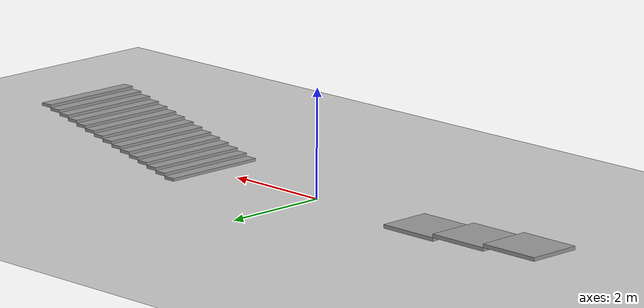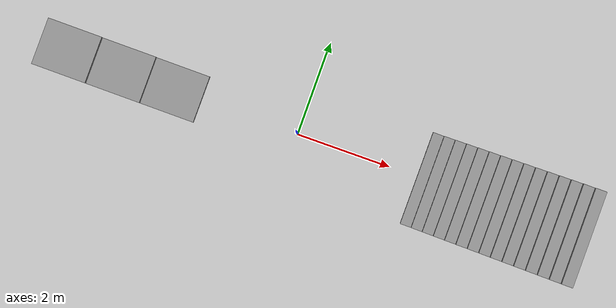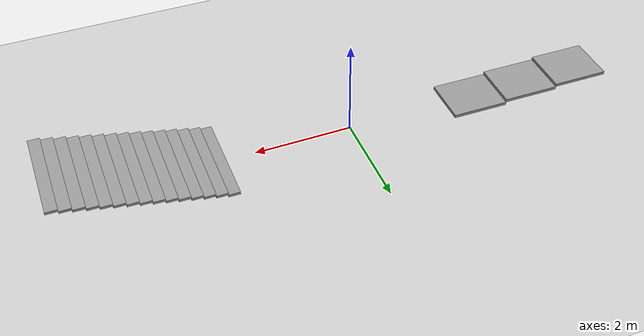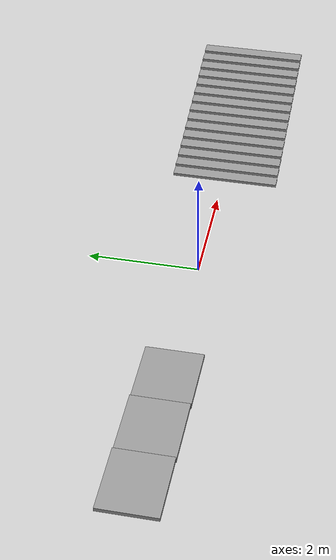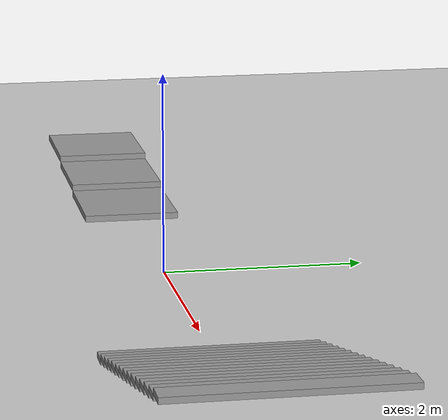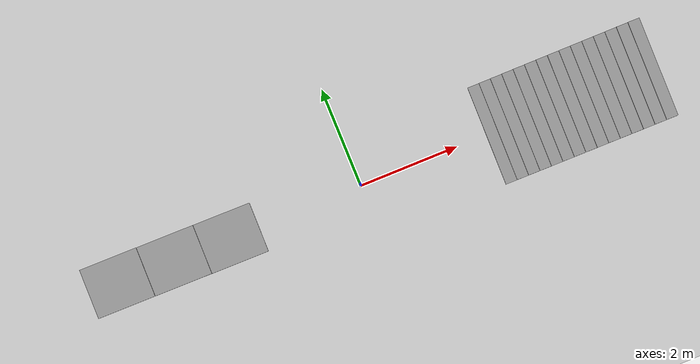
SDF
<sdf version="1.7">
 <world name="default">
  <model name="ground_plane">
   <static>1</static>
   <link name="link">
    <collision name="collision">
     <geometry><plane><normal>0 0 1</normal><size>100 100</size></plane></geometry>
     <surface>
      <contact><collide_bitmask>65535</collide_bitmask></contact>
      <friction><ode><mu>100</mu><mu2>50</mu2></ode></friction>
     </surface>
    </collision>
    <visual name="visual">
     <cast_shadows>0</cast_shadows>
     <geometry><plane><normal>0 0 1</normal><size>100 100</size></plane></geometry>
     <material>
      <script><uri>file://media/materials/scripts/gazebo.material</uri><name>Gazebo/Grey</name></script>
     </material>
    </visual>
   </link>
  </model>
  <model name="stair4">
   <pose>3.22875 -0.027347 0 0 -0 1.56364</pose>
   <link name="Stairs_0">
    <visual name="Stairs_0_Visual_0">
     <pose>-0 0.508333 0.026667 0 -0 0</pose>
     <geometry><box><size>2 0.233333 0.053333</size></box></geometry>
     <material>
      <script><uri>file://media/materials/scripts/gazebo.material</uri><name>Gazebo/Grey</name></script>
      <ambient>1 1 1 1</ambient>
     </material>
     <meta><layer>0</layer></meta>
    </visual>
    <collision name="Stairs_0_Collision_0">
     <geometry><box><size>2 0.233333 0.053333</size></box></geometry>
     <pose>-0 0.508333 0.026667 0 -0 0</pose>
    </collision>
    <visual name="Stairs_0_Visual_1">
     <pose>-0 0.275 0.08 0 -0 0</pose>
     <geometry><box><size>2 0.233333 0.053333</size></box></geometry>
     <material>
      <script><uri>file://media/materials/scripts/gazebo.material</uri><name>Gazebo/Grey</name></script>
      <ambient>1 1 1 1</ambient>
     </material>
     <meta><layer>0</layer></meta>
    </visual>
    <collision name="Stairs_0_Collision_1">
     <geometry><box><size>2 0.233333 0.053333</size></box></geometry>
     <pose>-0 0.275 0.08 0 -0 0</pose>
    </collision>
    <visual name="Stairs_0_Visual_2">
     <pose>-0 0.041667 0.133333 0 -0 0</pose>
     <geometry><box><size>2 0.233333 0.053333</size></box></geometry>
     <material>
      <script><uri>file://media/materials/scripts/gazebo.material</uri><name>Gazebo/Grey</name></script>
      <ambient>1 1 1 1</ambient>
     </material>
     <meta><layer>0</layer></meta>
    </visual>
    <collision name="Stairs_0_Collision_2">
     <geometry><box><size>2 0.233333 0.053333</size></box></geometry>
     <pose>-0 0.041667 0.133333 0 -0 0</pose>
    </collision>
    <visual name="Stairs_0_Visual_3">
     <pose>-0 -0.191667 0.186667 0 -0 0</pose>
     <geometry><box><size>2 0.233333 0.053333</size></box></geometry>
     <material>
      <script><uri>file://media/materials/scripts/gazebo.material</uri><name>Gazebo/Grey</name></script>
      <ambient>1 1 1 1</ambient>
     </material>
     <meta><layer>0</layer></meta>
    </visual>
    <collision name="Stairs_0_Collision_3">
     <geometry><box><size>2 0.233333 0.053333</size></box></geometry>
     <pose>-0 -0.191667 0.186667 0 -0 0</pose>
    </collision>
    <visual name="Stairs_0_Visual_4">
     <pose>-0 -0.425 0.24 0 -0 0</pose>
     <geometry><box><size>2 0.233333 0.053333</size></box></geometry>
     <material>
      <script><uri>file://media/materials/scripts/gazebo.material</uri><name>Gazebo/Grey</name></script>
      <ambient>1 1 1 1</ambient>
     </material>
     <meta><layer>0</layer></meta>
    </visual>
    <collision name="Stairs_0_Collision_4">
     <geometry><box><size>2 0.233333 0.053333</size></box></geometry>
     <pose>-0 -0.425 0.24 0 -0 0</pose>
    </collision>
    <visual name="Stairs_0_Visual_5">
     <pose>-0 -0.658333 0.293333 0 -0 0</pose>
     <geometry><box><size>2 0.233333 0.053333</size></box></geometry>
     <material>
      <script><uri>file://media/materials/scripts/gazebo.material</uri><name>Gazebo/Grey</name></script>
      <ambient>1 1 1 1</ambient>
     </material>
     <meta><layer>0</layer></meta>
    </visual>
    <collision name="Stairs_0_Collision_5">
     <geometry><box><size>2 0.233333 0.053333</size></box></geometry>
     <pose>-0 -0.658333 0.293333 0 -0 0</pose>
    </collision>
    <visual name="Stairs_0_Visual_6">
     <pose>-0 -0.891667 0.346667 0 -0 0</pose>
     <geometry><box><size>2 0.233333 0.053333</size></box></geometry>
     <material>
      <script><uri>file://media/materials/scripts/gazebo.material</uri><name>Gazebo/Grey</name></script>
      <ambient>1 1 1 1</ambient>
     </material>
     <meta><layer>0</layer></meta>
    </visual>
    <collision name="Stairs_0_Collision_6">
     <geometry><box><size>2 0.233333 0.053333</size></box></geometry>
     <pose>-0 -0.891667 0.346667 0 -0 0</pose>
    </collision>
    <visual name="Stairs_0_Visual_7">
     <pose>-0 -1.125 0.4 0 -0 0</pose>
     <geometry><box><size>2 0.233333 0.053333</size></box></geometry>
     <material>
      <script><uri>file://media/materials/scripts/gazebo.material</uri><name>Gazebo/Grey</name></script>
      <ambient>1 1 1 1</ambient>
     </material>
     <meta><layer>0</layer></meta>
    </visual>
    <collision name="Stairs_0_Collision_7">
     <geometry><box><size>2 0.233333 0.053333</size></box></geometry>
     <pose>-0 -1.125 0.4 0 -0 0</pose>
    </collision>
    <visual name="Stairs_0_Visual_8">
     <pose>-0 -1.35833 0.453333 0 -0 0</pose>
     <geometry><box><size>2 0.233333 0.053333</size></box></geometry>
     <material>
      <script><uri>file://media/materials/scripts/gazebo.material</uri><name>Gazebo/Grey</name></script>
      <ambient>1 1 1 1</ambient>
     </material>
     <meta><layer>0</layer></meta>
    </visual>
    <collision name="Stairs_0_Collision_8">
     <geometry><box><size>2 0.233333 0.053333</size></box></geometry>
     <pose>-0 -1.35833 0.453333 0 -0 0</pose>
    </collision>
    <visual name="Stairs_0_Visual_9">
     <pose>-0 -1.59167 0.506667 0 -0 0</pose>
     <geometry><box><size>2 0.233333 0.053333</size></box></geometry>
     <material>
      <script><uri>file://media/materials/scripts/gazebo.material</uri><name>Gazebo/Grey</name></script>
      <ambient>1 1 1 1</ambient>
     </material>
     <meta><layer>0</layer></meta>
    </visual>
    <collision name="Stairs_0_Collision_9">
     <geometry><box><size>2 0.233333 0.053333</size></box></geometry>
     <pose>-0 -1.59167 0.506667 0 -0 0</pose>
    </collision>
    <visual name="Stairs_0_Visual_10">
     <pose>-0 -1.825 0.56 0 -0 0</pose>
     <geometry><box><size>2 0.233333 0.053333</size></box></geometry>
     <material>
      <script><uri>file://media/materials/scripts/gazebo.material</uri><name>Gazebo/Grey</name></script>
      <ambient>1 1 1 1</ambient>
     </material>
     <meta><layer>0</layer></meta>
    </visual>
    <collision name="Stairs_0_Collision_10">
     <geometry><box><size>2 0.233333 0.053333</size></box></geometry>
     <pose>-0 -1.825 0.56 0 -0 0</pose>
    </collision>
    <visual name="Stairs_0_Visual_11">
     <pose>-0 -2.05833 0.613333 0 -0 0</pose>
     <geometry><box><size>2 0.233333 0.053333</size></box></geometry>
     <material>
      <script><uri>file://media/materials/scripts/gazebo.material</uri><name>Gazebo/Grey</name></script>
      <ambient>1 1 1 1</ambient>
     </material>
     <meta><layer>0</layer></meta>
    </visual>
    <collision name="Stairs_0_Collision_11">
     <geometry><box><size>2 0.233333 0.053333</size></box></geometry>
     <pose>-0 -2.05833 0.613333 0 -0 0</pose>
    </collision>
    <visual name="Stairs_0_Visual_12">
     <pose>-0 -2.29167 0.666667 0 -0 0</pose>
     <geometry><box><size>2 0.233333 0.053333</size></box></geometry>
     <material>
      <script><uri>file://media/materials/scripts/gazebo.material</uri><name>Gazebo/Grey</name></script>
      <ambient>1 1 1 1</ambient>
     </material>
     <meta><layer>0</layer></meta>
    </visual>
    <collision name="Stairs_0_Collision_12">
     <geometry><box><size>2 0.233333 0.053333</size></box></geometry>
     <pose>-0 -2.29167 0.666667 0 -0 0</pose>
    </collision>
    <visual name="Stairs_0_Visual_13">
     <pose>-0 -2.525 0.72 0 -0 0</pose>
     <geometry><box><size>2 0.233333 0.053333</size></box></geometry>
     <material>
      <script><uri>file://media/materials/scripts/gazebo.material</uri><name>Gazebo/Grey</name></script>
      <ambient>1 1 1 1</ambient>
     </material>
     <meta><layer>0</layer></meta>
    </visual>
    <collision name="Stairs_0_Collision_13">
     <geometry><box><size>2 0.233333 0.053333</size></box></geometry>
     <pose>-0 -2.525 0.72 0 -0 0</pose>
    </collision>
    <visual name="Stairs_0_Visual_14">
     <pose>-0 -2.75833 0.773333 0 -0 0</pose>
     <geometry><box><size>2 0.233333 0.053333</size></box></geometry>
     <material>
      <script><uri>file://media/materials/scripts/gazebo.material</uri><name>Gazebo/Grey</name></script>
      <ambient>1 1 1 1</ambient>
     </material>
     <meta><layer>0</layer></meta>
    </visual>
    <collision name="Stairs_0_Collision_14">
     <geometry><box><size>2 0.233333 0.053333</size></box></geometry>
     <pose>-0 -2.75833 0.773333 0 -0 0</pose>
    </collision>
   </link>
   <static>1</static>
  </model>
  <model name="stair6">
   <pose>-3.15653 -0.743093 0 0 0 -1.57573</pose>
   <link name="Stairs_3">
    <visual name="Stairs_3_Visual_0">
     <pose>-0.75 0.456667 0.033333 0 -0 0</pose>
     <geometry><box><size>1 1.16667 0.066667</size></box></geometry>
     <material>
      <script><uri>file://media/materials/scripts/gazebo.material</uri><name>Gazebo/Grey</name></script>
      <ambient>1 1 1 1</ambient>
     </material>
     <meta><layer>0</layer></meta>
    </visual>
    <collision name="Stairs_3_Collision_0">
     <geometry><box><size>1 1.16667 0.066667</size></box></geometry>
     <pose>-0.75 0.456667 0.033333 0 -0 0</pose>
    </collision>
    <visual name="Stairs_3_Visual_1">
     <pose>-0.75 -0.71 0.1 0 -0 0</pose>
     <geometry><box><size>1 1.16667 0.066667</size></box></geometry>
     <material>
      <script><uri>file://media/materials/scripts/gazebo.material</uri><name>Gazebo/Grey</name></script>
      <ambient>1 1 1 1</ambient>
     </material>
     <meta><layer>0</layer></meta>
    </visual>
    <collision name="Stairs_3_Collision_1">
     <geometry><box><size>1 1.16667 0.066667</size></box></geometry>
     <pose>-0.75 -0.71 0.1 0 -0 0</pose>
    </collision>
    <visual name="Stairs_3_Visual_2">
     <pose>-0.75 -1.87667 0.166667 0 -0 0</pose>
     <geometry><box><size>1 1.16667 0.066667</size></box></geometry>
     <material>
      <script><uri>file://media/materials/scripts/gazebo.material</uri><name>Gazebo/Grey</name></script>
      <ambient>1 1 1 1</ambient>
     </material>
     <meta><layer>0</layer></meta>
    </visual>
    <collision name="Stairs_3_Collision_2">
     <geometry><box><size>1 1.16667 0.066667</size></box></geometry>
     <pose>-0.75 -1.87667 0.166667 0 -0 0</pose>
    </collision>
   </link>
   <static>1</static>
  </model>
 </world>
</sdf>
